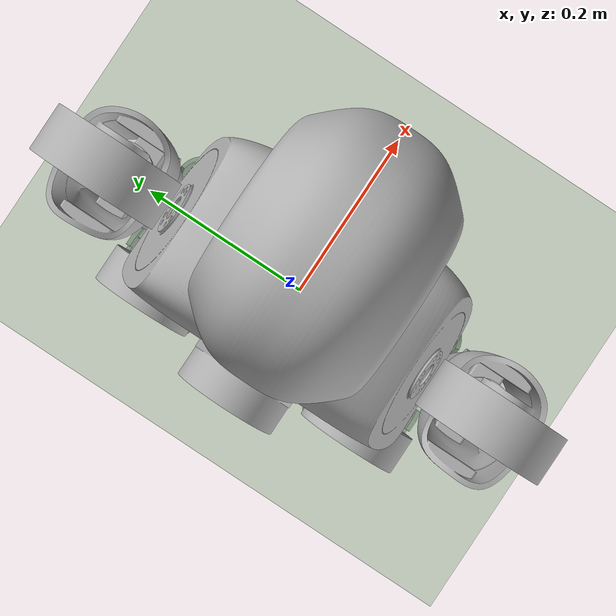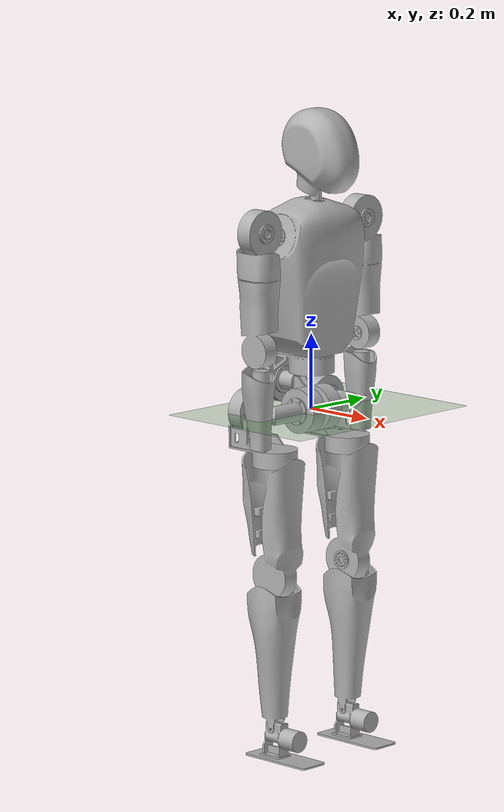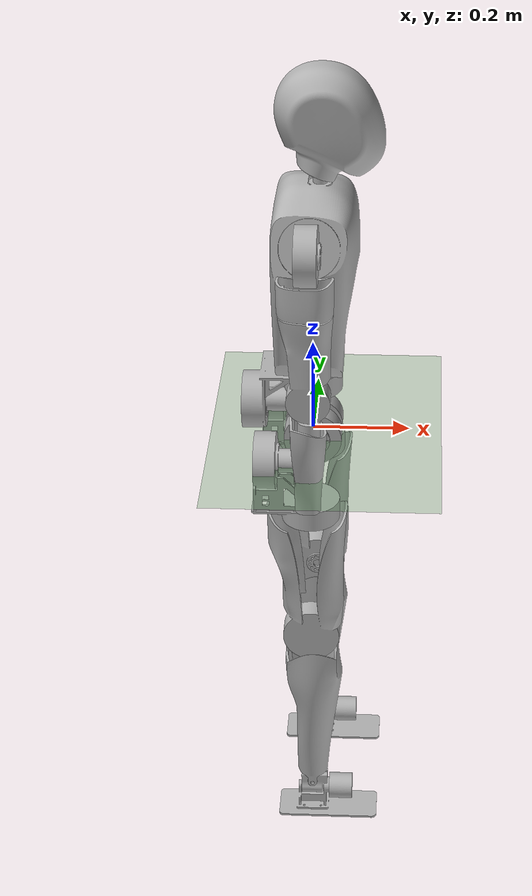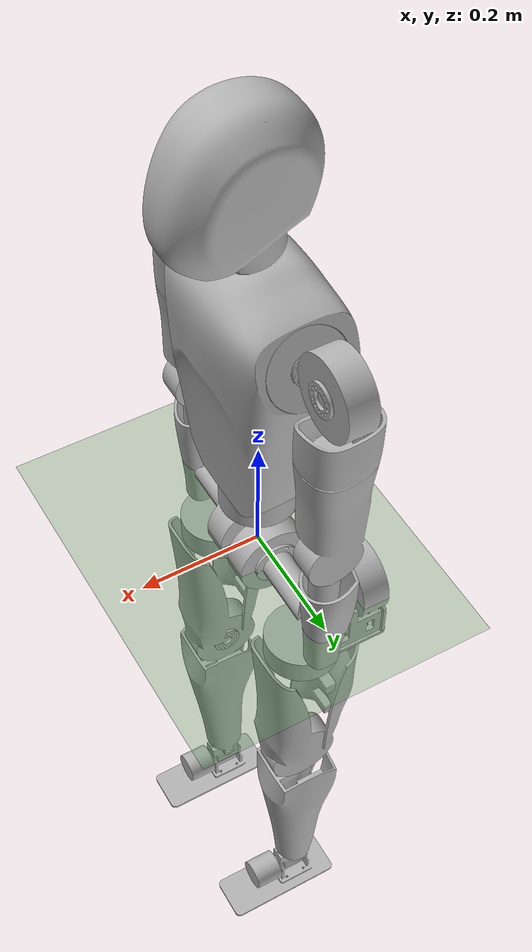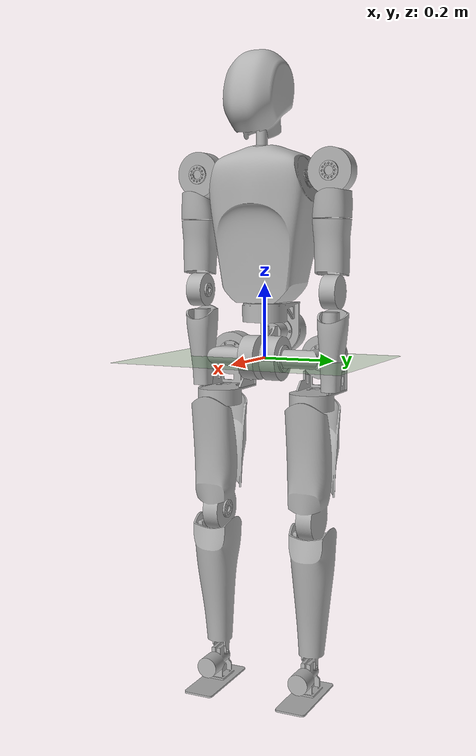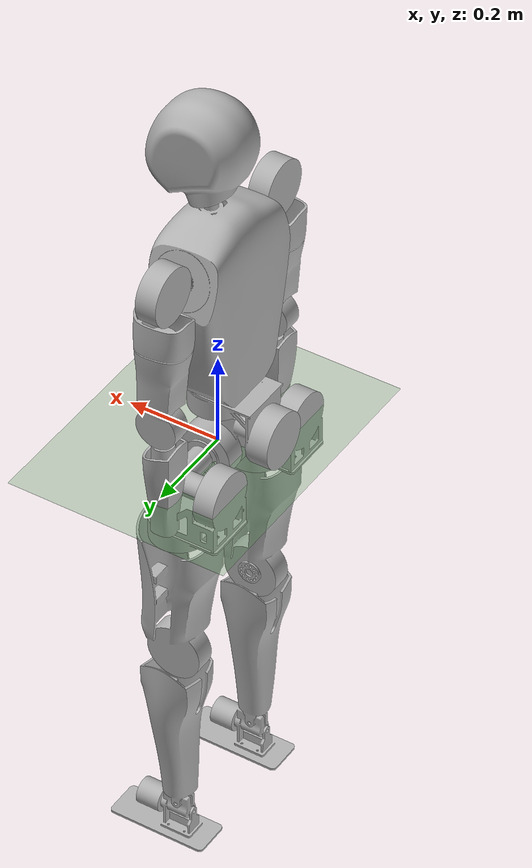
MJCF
<mujoco model="p0">
  <compiler angle="radian" assetdir="assets" autolimits="true"/>

  <option cone="pyramidal" impratio="1" solver="Newton" iterations="4" ls_iterations="4" density="1.2" viscosity="0.00002">
    <flag eulerdamp="disable"/>
  </option>

  <default>
    <site size="0.01" group="5"/>
    <geom contype="0" conaffinity="0" group="1"/>
    <joint damping="0.01" frictionloss="0.1"/>
    <position forcelimited="true" kp="100" kv="2"/>

    <default class="foot">
      <geom margin="0" gap="0" contype="1" conaffinity="0" solref="0.02 1" type="box" size="0.11 0.0425 0.008" solimp="0.8 0.95 0.001" pos="-0.0026 0 -0.05" priority="1" condim="6" friction="1.0 0.005 0.0001" group="4"/>
      <site pos="-0.0026 0 -0.05"/>
    </default>
    <default class="reward_collision_sphere">
      <geom group="5" rgba="1 0 0 1"/>
    </default>
  </default>

  <asset>
    <mesh name="base_link" file="base_link.stl" scale="0.001 0.001 0.001"/>
    <mesh name="left_inner_shoulder_1" file="left_inner_shoulder_1.stl" scale="0.001 0.001 0.001"/>
    <mesh name="left_outer_shoulder_1" file="left_outer_shoulder_1.stl" scale="0.001 0.001 0.001"/>
    <mesh name="left_upper_arm_1" file="left_upper_arm_1.stl" scale="0.001 0.001 0.001"/>
    <mesh name="left_elbow_1" file="left_elbow_1.stl" scale="0.001 0.001 0.001"/>
    <mesh name="left_forearm_1" file="left_forearm_1.stl" scale="0.001 0.001 0.001"/>
    <mesh name="right_inner_shoulder_1" file="right_inner_shoulder_1.stl" scale="0.001 0.001 0.001"/>
    <mesh name="right_outer_shoulder_1" file="right_outer_shoulder_1.stl" scale="0.001 0.001 0.001"/>
    <mesh name="right_upper_arm_1" file="right_upper_arm_1.stl" scale="0.001 0.001 0.001"/>
    <mesh name="right_elbow_1" file="right_elbow_1.stl" scale="0.001 0.001 0.001"/>
    <mesh name="right_forearm_1" file="right_forearm_1.stl" scale="0.001 0.001 0.001"/>
    <mesh name="neck_1" file="neck_1.stl" scale="0.001 0.001 0.001"/>
    <mesh name="head_1" file="head_1.stl" scale="0.001 0.001 0.001"/>
    <mesh name="upper_core_1" file="upper_core_1.stl" scale="0.001 0.001 0.001"/>
    <mesh name="lower_core_1" file="lower_core_1.stl" scale="0.001 0.001 0.001"/>
    <mesh name="left_inner_hip_1" file="left_inner_hip_1.stl" scale="0.001 0.001 0.001"/>
    <mesh name="left_outer_hip_1" file="left_outer_hip_1.stl" scale="0.001 0.001 0.001"/>
    <mesh name="left_upper_leg_1" file="left_upper_leg_1.stl" scale="0.001 0.001 0.001"/>
    <mesh name="left_lower_leg_1" file="left_lower_leg_1.stl" scale="0.001 0.001 0.001"/>
    <mesh name="left_ankle_1" file="left_ankle_1.stl" scale="0.001 0.001 0.001"/>
    <mesh name="left_ankle_roll_link_1" file="left_ankle_roll_link_1.stl" scale="0.001 0.001 0.001"/>
    <mesh name="right_inner_hip_1" file="right_inner_hip_1.stl" scale="0.001 0.001 0.001"/>
    <mesh name="right_outer_hip_1" file="right_outer_hip_1.stl" scale="0.001 0.001 0.001"/>
    <mesh name="right_upper_leg_1" file="right_upper_leg_1.stl" scale="0.001 0.001 0.001"/>
    <mesh name="right_lower_leg_1" file="right_lower_leg_1.stl" scale="0.001 0.001 0.001"/>
    <mesh name="right_ankle_1" file="right_ankle_1.stl" scale="0.001 0.001 0.001"/>
    <mesh name="right_ankle_roll_link_1" file="right_ankle_roll_link_1.stl" scale="0.001 0.001 0.001"/>

    <texture type="skybox" builtin="gradient" rgb1="0.95 0.95 0.95" rgb2="0.95 0.95 0.95" width="100" height="100" />
    <texture name="texplane" type="2d" builtin="checker" rgb1="0.3 0.55 0.3" rgb2="0.3 0.55 0.3" mark="edge" markrgb="1.0 1.0 1.0" width="512" height="512"/>
    <material name="MatPlane" texture="texplane" texrepeat="2 2" texuniform="true" specular="0.9" shininess="0.5" reflectance="0.0" rgba="1 1 1 1"/>
  </asset>

  <worldbody>
    <geom contype="0" conaffinity="1" name="floor" pos="0 0 0" material="MatPlane" size="100 100 0.125" type="plane" group="0"/>
    <light name="toplight1" directional="true" dir="1 0 -0.5" diffuse="0.2 0.2 0.2" specular="0.3 0.3 0.3" ambient="0.01 0.01 0.01" castshadow="true"/>
    <light name="toplight2" directional="true" dir="-1 0 -0.5" diffuse="0.2 0.2 0.2" specular="0.3 0.3 0.3" ambient="0.01 0.01 0.01" castshadow="true"/>
    <light name="toplight3" directional="true" dir="0 1 -0.5" diffuse="0.2 0.2 0.2" specular="0.3 0.3 0.3" ambient="0.01 0.01 0.01" castshadow="true"/>
    <light name="toplight4" directional="true" dir="0 -1 -1" diffuse="0.2 0.2 0.2" specular="0.3 0.3 0.3" ambient="0.01 0.01 0.01" castshadow="true"/>
    <light name="spotlight" mode="targetbodycom" target="trunk" pos="0 0 2" diffuse="0.4 0.4 0.4" specular="0.3 0.3 0.3" cutoff="10" castshadow="false"/>

    <body name="trunk" pos="0 0 0">
      <camera name="track" mode="trackcom" pos="0 -2 0" xyaxes="1 0 0 0 0 1"/>

      <freejoint/>

      <site name="imu" pos="0 0 0.3"/>

      <inertial pos="-0.000337055 -2.04152e-05 0.399169" quat="0.000152061 -0.704338 4.66843e-05 0.709864" mass="7.51287" diaginertia="0.0524202 0.105526 0.134794"/>

      <geom type="mesh" contype="0" conaffinity="0" group="1" density="0" rgba="0.7 0.7 0.7 1" mesh="base_link"/>
      <geom class="reward_collision_sphere" pos="0 0 0.25" size="0.1"/>
      <geom class="reward_collision_sphere" pos="0 0 0.42" size="0.1"/>

      <camera name="ego_camera" pos="0.1 0 0.5" quat="0.6532815 0.2705981 -0.2705981 -0.6532815"/>

      <body name="upper_core_1" pos="0 0 0.143">
        <inertial pos="-0.0591135 0.000351232 -0.042107" quat="-0.0202355 0.493866 -0.0146926 0.869179" mass="3.54787" diaginertia="0.0210958 0.0207794 0.00685079"/>
        <joint name="torso_pan_joint" pos="0 0 0" axis="0 0 1" range="-0.785398 0.785398" armature="0.02"/>
        <geom pos="0 0 -0.143" type="mesh" contype="0" conaffinity="0" group="1" density="0" rgba="0.7 0.7 0.7 1" mesh="upper_core_1"/>
        <body name="lower_core_1" pos="-0.102 0 -0.078">
          <inertial pos="0.0927912 2.88041e-05 -0.0566905" quat="-0.00243322 0.907911 0.0011286 0.419155" mass="3.93904" diaginertia="0.0159428 0.0117679 0.0115057"/>
          <joint name="torso_roll_joint" pos="0 0 0" axis="1 0 0" range="-0.523599 0.523599" armature="0.02"/>
          <geom pos="0.102 0 -0.065" type="mesh" contype="0" conaffinity="0" group="1" density="0" rgba="0.7 0.7 0.7 1" mesh="lower_core_1"/>
          <geom class="reward_collision_sphere" pos="0.082 0 -0.045" size="0.08"/>
          <body name="left_inner_hip_1" pos="0.102 0.0545 -0.065">
            <inertial pos="-0.0217386 0.0573907 0" quat="0.322598 0.62923 -0.322598 0.62923" mass="0.969028" diaginertia="0.00229912 0.00203979 0.000901565"/>
            <joint name="left_hip_pitch_joint" pos="0 0 0" axis="0 -1 0" range="-0.261799 1.5708" armature="0.02"/>
            <geom pos="0 -0.0545 0" type="mesh" contype="0" conaffinity="0" group="1" density="0" rgba="0.7 0.7 0.7 1" mesh="left_inner_hip_1"/>
            <body name="left_outer_hip_1" pos="-0.0695 0.083 0">
              <inertial pos="0.0264573 0.00032525 -0.0671169" quat="0.953923 0.0429723 -0.261849 -0.140068" mass="3.71662" diaginertia="0.0284201 0.0282767 0.0076392"/>
              <joint name="left_hip_roll_joint" pos="0 0 0" axis="-1 0 0" range="-1.0472 0.349066" armature="0.02"/>
              <geom pos="0.0695 -0.1375 0" type="mesh" contype="0" conaffinity="0" group="1" density="0" rgba="0.7 0.7 0.7 1" mesh="left_outer_hip_1"/>
              <geom class="reward_collision_sphere" pos="0.04 0 -0.037" size="0.06"/>
              <body name="left_upper_leg_1" pos="0.0695 0 -0.1335">
                <inertial pos="0.000145278 0.0018009 -0.205131" quat="0.709347 0.00311202 -0.0068087 0.70482" mass="3.15817" diaginertia="0.0414386 0.039529 0.00486973"/>
                <joint name="left_hip_yaw_joint" pos="0 0 0" axis="0 0 1" range="-0.785398 1.5708" armature="0.02"/>
                <geom pos="0 -0.1375 0.1335" type="mesh" contype="0" conaffinity="0" group="1" density="0" rgba="0.7 0.7 0.7 1" mesh="left_upper_leg_1"/>
                <geom class="reward_collision_sphere" pos="0 0 -0.15" size="0.06"/>
                <body name="left_lower_leg_1" pos="0 -0.0205 -0.2965">
                  <inertial pos="-0.000901292 0.0317511 -0.162354" quat="0.997703 -0.033867 0.0147322 0.0567947" mass="2.05577" diaginertia="0.021818 0.0216178 0.00275017"/>
                  <joint name="left_knee_joint" pos="0 0 0" axis="0 1 0" range="0 1.74533" armature="0.02"/>
                  <geom pos="0 -0.117 0.43" type="mesh" contype="0" conaffinity="0" group="1" density="0" rgba="0.7 0.7 0.7 1" mesh="left_lower_leg_1"/>
                  <geom class="reward_collision_sphere" pos="0 0.0205 0" size="0.06"/>
                  <geom class="reward_collision_sphere" pos="0 0.0205 -0.2" size="0.05"/>
                  <body name="left_ankle_1" pos="0 0.0205 -0.417">
                    <inertial pos="0.0240556 2.91422e-06 -0.014911" quat="0.460062 0.536998 0.537088 0.459905" mass="0.845358" diaginertia="0.00124346 0.00115319 0.000306633"/>
                    <joint name="left_ankle_pitch_joint" pos="0 0 0" axis="0 -1 0" range="-0.523599 0.523599" armature="0.01"/>
                    <geom pos="0 -0.1375 0.847" type="mesh" contype="0" conaffinity="0" group="1" density="0" rgba="0.7 0.7 0.7 1" mesh="left_ankle_1"/>
                    <body name="left_ankle_roll_link_1" pos="0.0376 0 -0.022">
                      <inertial pos="-0.0117281 0 -0.0448397" quat="0 0.716124 0 0.697973" mass="0.397076" diaginertia="0.00132153 0.00130671 0.000319512"/>
                      <joint name="left_ankle_roll_joint" pos="0 0 0" axis="-1 0 0" range="-0.523599 0.523599" armature="0.01"/>
                      <geom pos="-0.0376 -0.1375 0.869" type="mesh" contype="0" conaffinity="0" group="1" density="0" rgba="0.7 0.7 0.7 1" mesh="left_ankle_roll_link_1"/>
                      <geom name="left_foot" class="foot"/>
                      <site name="left_foot" class="foot"/>
                      <geom class="reward_collision_sphere" pos="-0.07 0 -0.025" size="0.03"/>
                      <geom class="reward_collision_sphere" pos="0.07 0 -0.025" size="0.03"/>
                    </body>
                  </body>
                </body>
              </body>
            </body>
          </body>
          <body name="right_inner_hip_1" pos="0.102 -0.0545 -0.065">
            <inertial pos="-0.0217386 -0.0573907 0" quat="0.62923 0.322598 -0.62923 0.322598" mass="0.969028" diaginertia="0.00229912 0.00203979 0.000901565"/>
            <joint name="right_hip_pitch_joint" pos="0 0 0" axis="0 -1 0" range="-0.261799 1.5708" armature="0.02"/>
            <geom pos="0 0.0545 0" type="mesh" contype="0" conaffinity="0" group="1" density="0" rgba="0.7 0.7 0.7 1" mesh="right_inner_hip_1"/>
            <body name="right_outer_hip_1" pos="-0.0695 -0.083 0">
              <inertial pos="0.0264573 -0.000325252 -0.0671169" quat="0.953923 -0.0429725 -0.261849 0.140068" mass="3.71662" diaginertia="0.0284201 0.0282767 0.0076392"/>
              <joint name="right_hip_roll_joint" pos="0 0 0" axis="1 0 0" range="-1.0472 0.349066" armature="0.02"/>
              <geom pos="0.0695 0.1375 0" type="mesh" contype="0" conaffinity="0" group="1" density="0" rgba="0.7 0.7 0.7 1" mesh="right_outer_hip_1"/>
              <geom class="reward_collision_sphere" pos="0.04 0 -0.037" size="0.06"/>
              <body name="right_upper_leg_1" pos="0.0695 0 -0.1335">
                <inertial pos="0.000145273 -0.0018009 -0.205131" quat="0.70482 -0.00680868 0.00311203 0.709346" mass="3.15817" diaginertia="0.0414386 0.039529 0.00486973"/>
                <joint name="right_hip_yaw_joint" pos="0 0 0" axis="0 0 -1" range="-0.785398 1.5708" armature="0.02"/>
                <geom pos="0 0.1375 0.1335" type="mesh" contype="0" conaffinity="0" group="1" density="0" rgba="0.7 0.7 0.7 1" mesh="right_upper_leg_1"/>
                <geom class="reward_collision_sphere" pos="0 0 -0.15" size="0.06"/>
                <body name="right_lower_leg_1" pos="0 0.0205 -0.2965">
                  <inertial pos="-0.000901293 -0.0317511 -0.162354" quat="0.997703 0.033867 0.0147322 -0.0567948" mass="2.05577" diaginertia="0.021818 0.0216178 0.00275017"/>
                  <joint name="right_knee_joint" pos="0 0 0" axis="0 1 0" range="0 1.74533" armature="0.02"/>
                  <geom pos="0 0.117 0.43" type="mesh" contype="0" conaffinity="0" group="1" density="0" rgba="0.7 0.7 0.7 1" mesh="right_lower_leg_1"/>
                  <geom class="reward_collision_sphere" pos="0 -0.0205 0" size="0.06"/>
                  <geom class="reward_collision_sphere" pos="0 -0.0205 -0.2" size="0.05"/>
                  <body name="right_ankle_1" pos="0 -0.0205 -0.417">
                    <inertial pos="0.0240556 -2.91422e-06 -0.014911" quat="0.459905 0.537088 0.536998 0.460062" mass="0.845358" diaginertia="0.00124346 0.00115319 0.000306633"/>
                    <joint name="right_ankle_pitch_joint" pos="0 0 0" axis="0 -1 0" range="-0.523599 0.523599" armature="0.01"/>
                    <geom pos="0 0.1375 0.847" type="mesh" contype="0" conaffinity="0" group="1" density="0" rgba="0.7 0.7 0.7 1" mesh="right_ankle_1"/>
                    <body name="right_ankle_roll_link_1" pos="0.0376 0 -0.022">
                      <inertial pos="-0.0117281 0 -0.0448397" quat="0 0.716124 0 0.697973" mass="0.397076" diaginertia="0.00132153 0.00130671 0.000319512"/>
                      <joint name="right_ankle_roll_joint" pos="0 0 0" axis="1 0 0" range="-0.523599 0.523599" armature="0.01"/>
                      <geom pos="-0.0376 0.1375 0.869" type="mesh" contype="0" conaffinity="0" group="1" density="0" rgba="0.7 0.7 0.7 1" mesh="right_ankle_roll_link_1"/>
                      <geom name="right_foot" class="foot"/>
                      <site name="right_foot" class="foot"/>
                      <geom class="reward_collision_sphere" pos="-0.07 0 -0.025" size="0.03"/>
                      <geom class="reward_collision_sphere" pos="0.07 0 -0.025" size="0.03"/>
                    </body>
                  </body>
                </body>
              </body>
            </body>
          </body>
        </body>
      </body>
      <body name="neck_1" pos="0.016 0 0.559">
        <inertial pos="-0.000226145 -0.00346192 0.0631595" quat="0.997213 0.0745509 -0.00247801 0.00154275" mass="0.264001" diaginertia="0.000159407 0.000141114 0.000108341"/>
        <joint name="head_pan_joint" pos="0 0 0" axis="0 0 1" range="-0.785398 0.785398" armature="0.01"/>
        <geom pos="-0.016 0 -0.559" type="mesh" contype="0" conaffinity="0" group="1" density="0" rgba="0.7 0.7 0.7 1" mesh="neck_1"/>
        <body name="head_1" pos="-0.000246 -0.022 0.067998">
          <inertial pos="0.00512655 0.0204698 0.0654388" quat="0.64988 -0.258085 -0.239112 0.673702" mass="0.62049" diaginertia="0.0042472 0.00390507 0.00313606"/>
          <joint name="head_tilt_joint" pos="0 0 0" axis="0 -1 0" range="-0.436332 0.436332" armature="0.01"/>
          <geom pos="-0.015754 0.022 -0.626998" type="mesh" contype="0" conaffinity="0" group="1" density="0" rgba="0.7 0.7 0.7 1" mesh="head_1"/>
          <geom class="reward_collision_sphere" pos="0.03 0.022 0.06" size="0.08"/>
        </body>
      </body>
      <body name="left_inner_shoulder_1" pos="0 0.124317 0.4724">
        <inertial pos="-0.00272068 0.0610924 0.0154886" quat="0.594603 0.803987 0.00487065 0.00522126" mass="1.52268" diaginertia="0.00338197 0.00228004 0.00205033"/>
        <joint name="left_shoulder_pitch_joint" pos="0 0 0" axis="0 -0.965926 -0.258819" range="-0.785398 3.14159" armature="0.02"/>
        <geom pos="0 -0.124317 -0.4724" type="mesh" contype="0" conaffinity="0" group="1" density="0" rgba="0.7 0.7 0.7 1" mesh="left_inner_shoulder_1"/>
        <body name="left_outer_shoulder_1" pos="0.02 0.065683 0.0176">
          <inertial pos="-0.0255169 0.000703149 -0.0697955" quat="0.699198 -0.104443 -0.104807 0.699449" mass="0.702497" diaginertia="0.00170584 0.00132979 0.000806101"/>
          <joint name="left_shoulder_roll_joint" pos="0 0 0" axis="-1 0 0" range="-3.14159 0" armature="0.02"/>
          <geom pos="-0.02 -0.19 -0.49" type="mesh" contype="0" conaffinity="0" group="1" density="0" rgba="0.7 0.7 0.7 1" mesh="left_outer_shoulder_1"/>
          <geom class="reward_collision_sphere" pos="0 0 0" size="0.05"/>
          <body name="left_upper_arm_1" pos="-0.02 0 -0.11444">
            <inertial pos="-0.000207571 0.00460989 -0.148785" quat="0.717317 0.0075692 -0.0111556 0.696617" mass="1.34455" diaginertia="0.00645495 0.00629878 0.0011181"/>
            <joint name="left_shoulder_yaw_joint" pos="0 0 0" axis="0 0 -1" range="-0.785398 1.5708" armature="0.01"/>
            <geom pos="0 -0.19 -0.37556" type="mesh" contype="0" conaffinity="0" group="1" density="0" rgba="0.7 0.7 0.7 1" mesh="left_upper_arm_1"/>
            <geom class="reward_collision_sphere" pos="0 0 -0.1" size="0.045"/>
            <body name="left_elbow_1" pos="0 -0.0165 -0.19546">
              <inertial pos="-6.75809e-06 0.0213783 -0.0589019" quat="0.986575 -0.163308 -3.4249e-05 -0.000293192" mass="0.340244" diaginertia="0.000509222 0.000414151 0.000208121"/>
              <joint name="left_elbow_pitch_joint" pos="0 0 0" axis="0 -1 0" range="0 2.0944" armature="0.01"/>
              <geom pos="0 -0.1735 -0.1801" type="mesh" contype="0" conaffinity="0" group="1" density="0" rgba="0.7 0.7 0.7 1" mesh="left_elbow_1"/>
              <geom class="reward_collision_sphere" pos="0 0.0165 0" size="0.045"/>
              <body name="left_forearm_1" pos="0 0.0165 -0.096">
                <inertial pos="-0.00207402 0.00120015 -0.0577361" quat="0.963553 -0.00999391 -0.0118311 0.26707" mass="0.363131" diaginertia="0.00118366 0.00118179 0.000197738"/>
                <joint name="left_elbow_roll_joint" pos="0 0 0" axis="0 0 1" range="-1.5708 1.5708" armature="0.01"/>
                <geom pos="0 -0.19 -0.0841" type="mesh" contype="0" conaffinity="0" group="1" density="0" rgba="0.7 0.7 0.7 1" mesh="left_forearm_1"/>
                <geom class="reward_collision_sphere" pos="0 0 -0.13" size="0.045"/>
              </body>
            </body>
          </body>
        </body>
      </body>
      <body name="right_inner_shoulder_1" pos="0 -0.124317 0.4724">
        <inertial pos="-0.00272068 -0.0610924 0.0154886" quat="0.803988 0.594603 -0.00522123 -0.00487059" mass="1.52268" diaginertia="0.00338197 0.00228004 0.00205033"/>
        <joint name="right_shoulder_pitch_joint" pos="0 0 0" axis="0 -0.965926 0.258819" range="-0.785398 3.14159" armature="0.02"/>
        <geom pos="0 0.124317 -0.4724" type="mesh" contype="0" conaffinity="0" group="1" density="0" rgba="0.7 0.7 0.7 1" mesh="right_inner_shoulder_1"/>
        <body name="right_outer_shoulder_1" pos="0.02 -0.065683 0.0176">
          <inertial pos="-0.0255169 -0.000703149 -0.0697955" quat="0.699449 -0.104807 -0.104443 0.699198" mass="0.702497" diaginertia="0.00170584 0.00132979 0.000806101"/>
          <joint name="right_shoulder_roll_joint" pos="0 0 0" axis="1 0 0" range="-3.14159 0" armature="0.02"/>
          <geom pos="-0.02 0.19 -0.49" type="mesh" contype="0" conaffinity="0" group="1" density="0" rgba="0.7 0.7 0.7 1" mesh="right_outer_shoulder_1"/>
          <geom class="reward_collision_sphere" pos="0 0 0" size="0.05"/>
          <body name="right_upper_arm_1" pos="-0.02 0 -0.11444">
            <inertial pos="-0.000207574 -0.00460989 -0.148785" quat="0.696616 -0.0111556 0.00756922 0.717317" mass="1.34455" diaginertia="0.00645495 0.00629878 0.0011181"/>
            <joint name="right_shoulder_yaw_joint" pos="0 0 0" axis="0 0 1" range="-0.785398 1.5708" armature="0.01"/>
            <geom pos="0 0.19 -0.37556" type="mesh" contype="0" conaffinity="0" group="1" density="0" rgba="0.7 0.7 0.7 1" mesh="right_upper_arm_1"/>
            <geom class="reward_collision_sphere" pos="0 0 -0.1" size="0.045"/>
            <body name="right_elbow_1" pos="0 0.0165 -0.19546">
              <inertial pos="-6.75809e-06 -0.0213783 -0.0589019" quat="0.986575 0.163308 -3.4249e-05 0.000293192" mass="0.340244" diaginertia="0.000509222 0.000414151 0.000208121"/>
              <joint name="right_elbow_pitch_joint" pos="0 0 0" axis="0 -1 0" range="0 2.0944" armature="0.01"/>
              <geom pos="0 0.1735 -0.1801" type="mesh" contype="0" conaffinity="0" group="1" density="0" rgba="0.7 0.7 0.7 1" mesh="right_elbow_1"/>
              <geom class="reward_collision_sphere" pos="0 -0.0165 0" size="0.045"/>
              <body name="right_forearm_1" pos="0 -0.0165 -0.096">
                <inertial pos="-0.00207402 -0.00120015 -0.0577361" quat="0.963553 0.00999391 -0.0118311 -0.267071" mass="0.363131" diaginertia="0.00118366 0.00118179 0.000197738"/>
                <joint name="right_elbow_roll_joint" pos="0 0 0" axis="0 0 -1" range="-1.5708 1.5708" armature="0.01"/>
                <geom pos="0 0.19 -0.0841" type="mesh" contype="0" conaffinity="0" group="1" density="0" rgba="0.7 0.7 0.7 1" mesh="right_forearm_1"/>
                <geom class="reward_collision_sphere" pos="0 0 -0.13" size="0.045"/>
              </body>
            </body>
          </body>
        </body>
      </body>
    </body>
  </worldbody>

  <actuator>
    <position name="torso_pan_joint" joint="torso_pan_joint" forcerange="-120 120"/>
    <position name="torso_roll_joint" joint="torso_roll_joint" forcerange="-120 120"/>
    <position name="left_hip_pitch_joint" joint="left_hip_pitch_joint" forcerange="-120 120"/>
    <position name="left_hip_roll_joint" joint="left_hip_roll_joint" forcerange="-120 120"/>
    <position name="left_hip_yaw_joint" joint="left_hip_yaw_joint" forcerange="-120 120"/>
    <position name="left_knee_joint" joint="left_knee_joint" forcerange="-120 120"/>
    <position name="left_ankle_pitch_joint" joint="left_ankle_pitch_joint" forcerange="-36 36"/>
    <position name="left_ankle_roll_joint" joint="left_ankle_roll_joint" forcerange="-14 14"/>
    <position name="right_hip_pitch_joint" joint="right_hip_pitch_joint" forcerange="-120 120"/>
    <position name="right_hip_roll_joint" joint="right_hip_roll_joint" forcerange="-120 120"/>
    <position name="right_hip_yaw_joint" joint="right_hip_yaw_joint" forcerange="-120 120"/>
    <position name="right_knee_joint" joint="right_knee_joint" forcerange="-120 120"/>
    <position name="right_ankle_pitch_joint" joint="right_ankle_pitch_joint" forcerange="-36 36"/>
    <position name="right_ankle_roll_joint" joint="right_ankle_roll_joint" forcerange="-14 14"/>
    <position name="head_pan_joint" joint="head_pan_joint" forcerange="-5.5 5.5"/>
    <position name="head_tilt_joint" joint="head_tilt_joint" forcerange="-5.5 5.5"/>
    <position name="left_shoulder_pitch_joint" joint="left_shoulder_pitch_joint" forcerange="-120 120"/>
    <position name="left_shoulder_roll_joint" joint="left_shoulder_roll_joint" forcerange="-120 120"/>
    <position name="left_shoulder_yaw_joint" joint="left_shoulder_yaw_joint" forcerange="-14 14"/>
    <position name="left_elbow_pitch_joint" joint="left_elbow_pitch_joint" forcerange="-36 36"/>
    <position name="left_elbow_roll_joint" joint="left_elbow_roll_joint" forcerange="-5.5 5.5"/>
    <position name="right_shoulder_pitch_joint" joint="right_shoulder_pitch_joint" forcerange="-120 120"/>
    <position name="right_shoulder_roll_joint" joint="right_shoulder_roll_joint" forcerange="-120 120"/>
    <position name="right_shoulder_yaw_joint" joint="right_shoulder_yaw_joint" forcerange="-14 14"/>
    <position name="right_elbow_pitch_joint" joint="right_elbow_pitch_joint" forcerange="-36 36"/>
    <position name="right_elbow_roll_joint" joint="right_elbow_roll_joint" forcerange="-5.5 5.5"/>
  </actuator>

  <sensor>
    <gyro site="imu" name="imu_angular_velocity"/>
    <velocimeter site="imu" name="imu_linear_velocity"/>
    <framelinvel objtype="site" objname="left_foot" name="left_foot_global_linear_velocity"/>
    <framelinvel objtype="site" objname="right_foot" name="right_foot_global_linear_velocity"/>
  </sensor>

  <keyframe>
    <key name="home" qpos="0 0 0.9101 1 0 0 0
      0.0 0.0
      0.2 0.0 0.0 0.4 0.2 0.0
      0.2 0.0 0.0 0.4 0.2 0.0
      0.0 0.0
      0.0 -0.2 0.0 0.3 0.0
      0.0 -0.2 0.0 0.3 0.0"/>
  </keyframe>
</mujoco>
